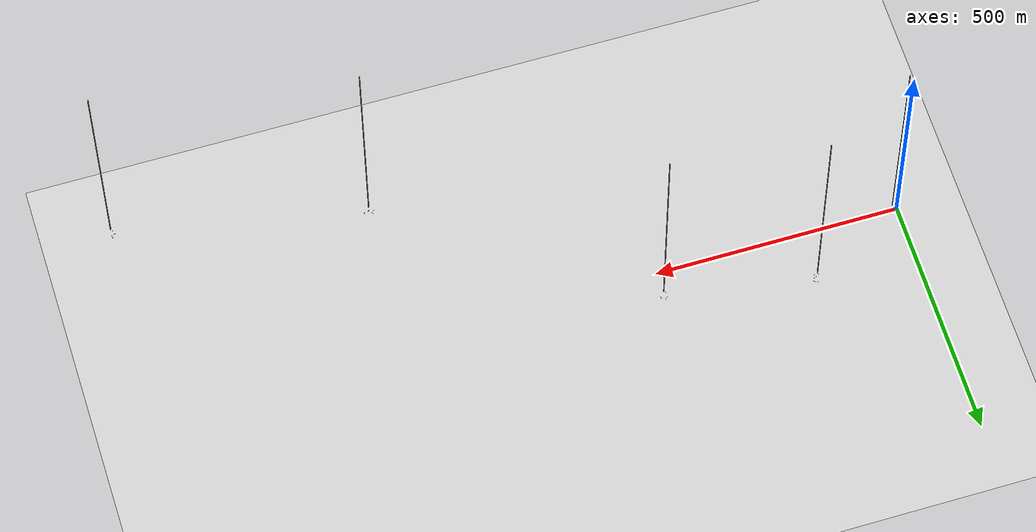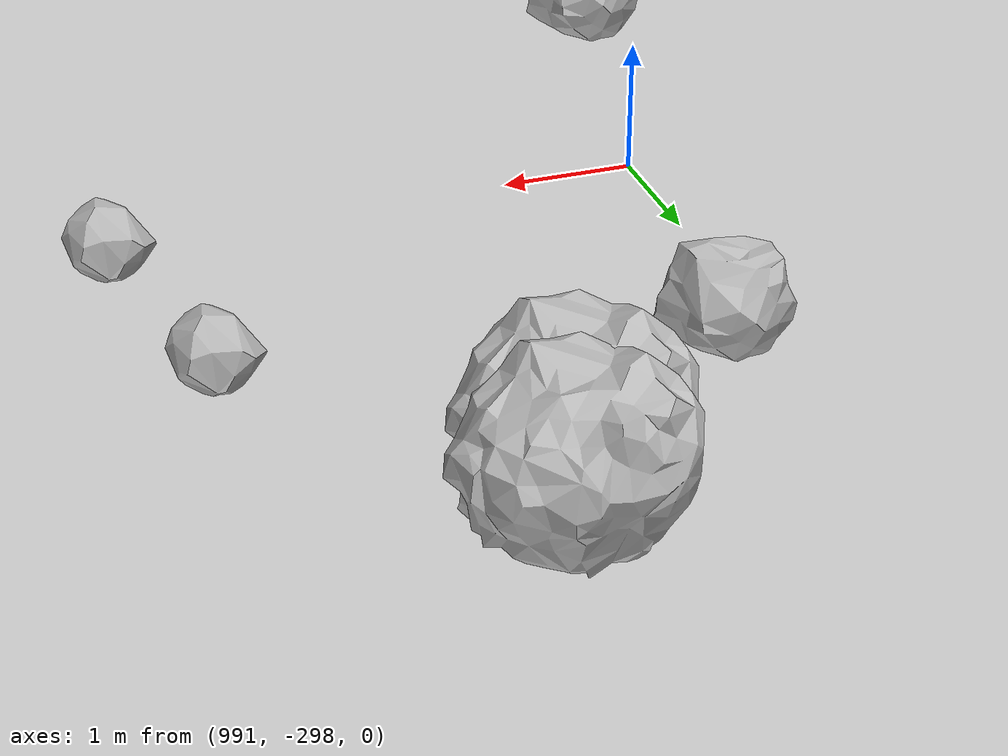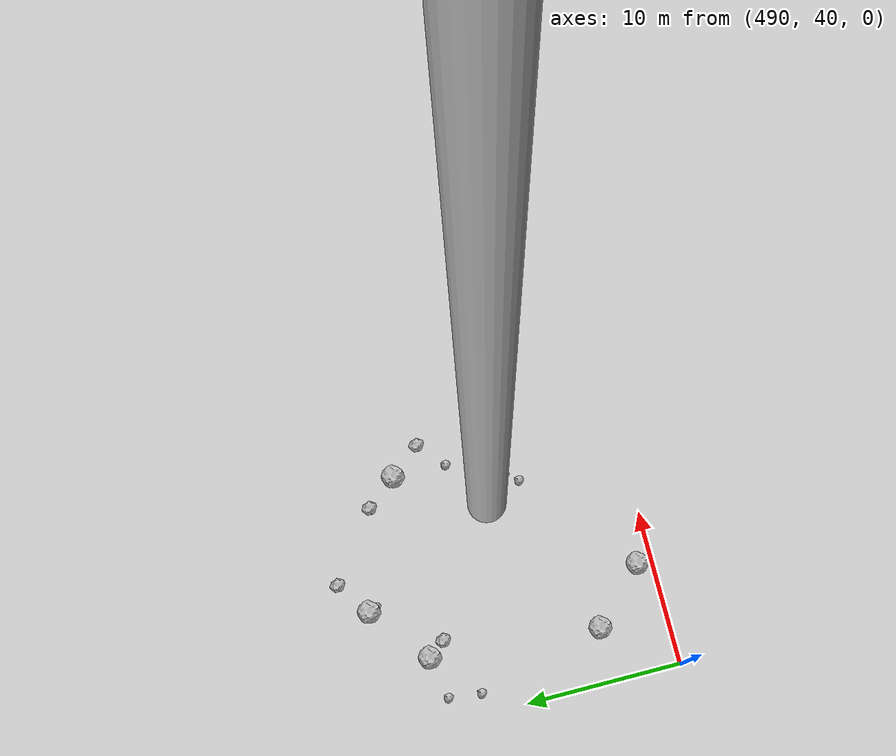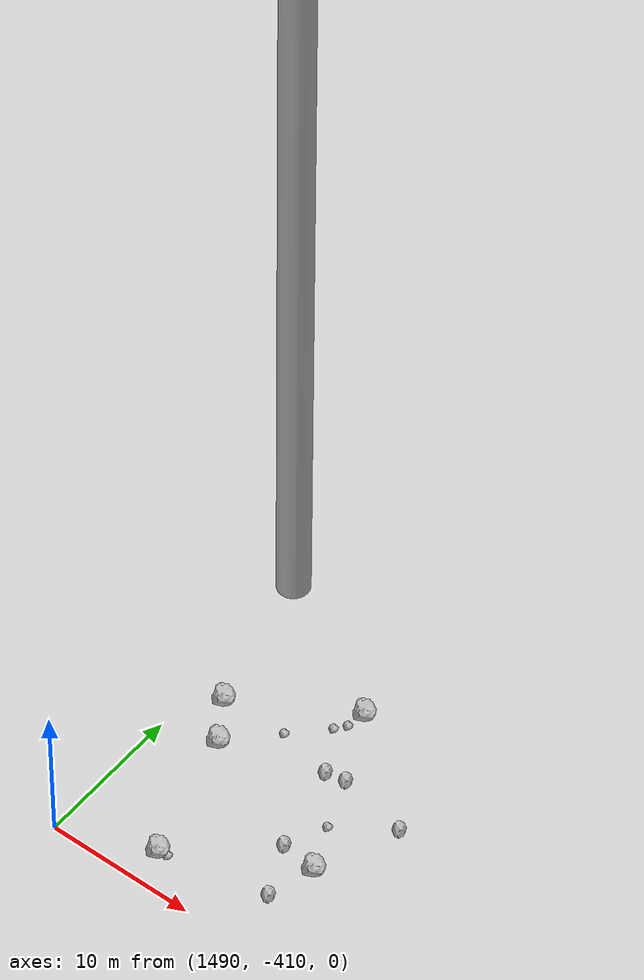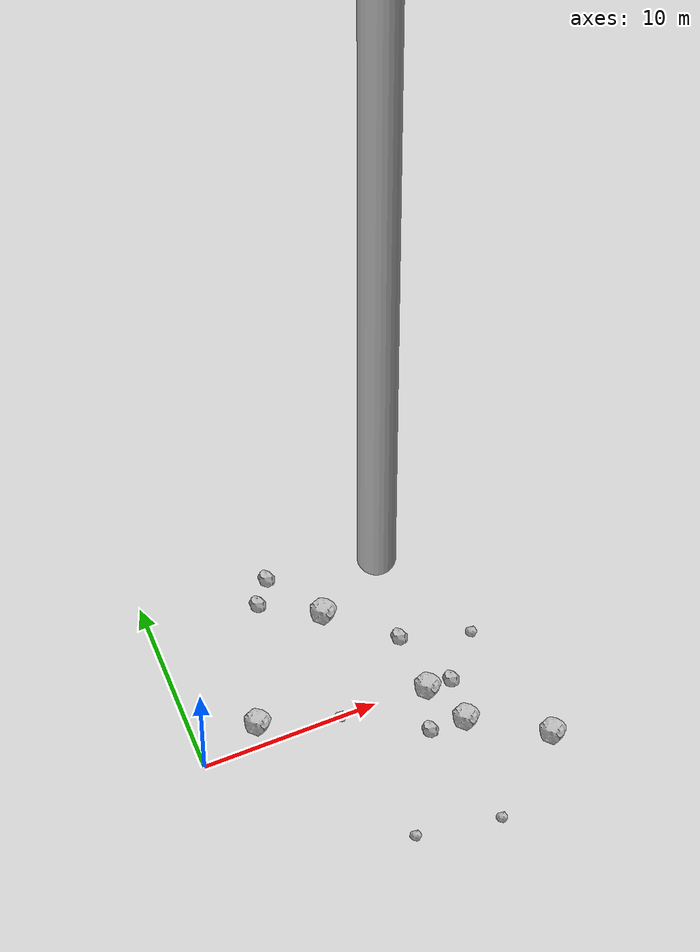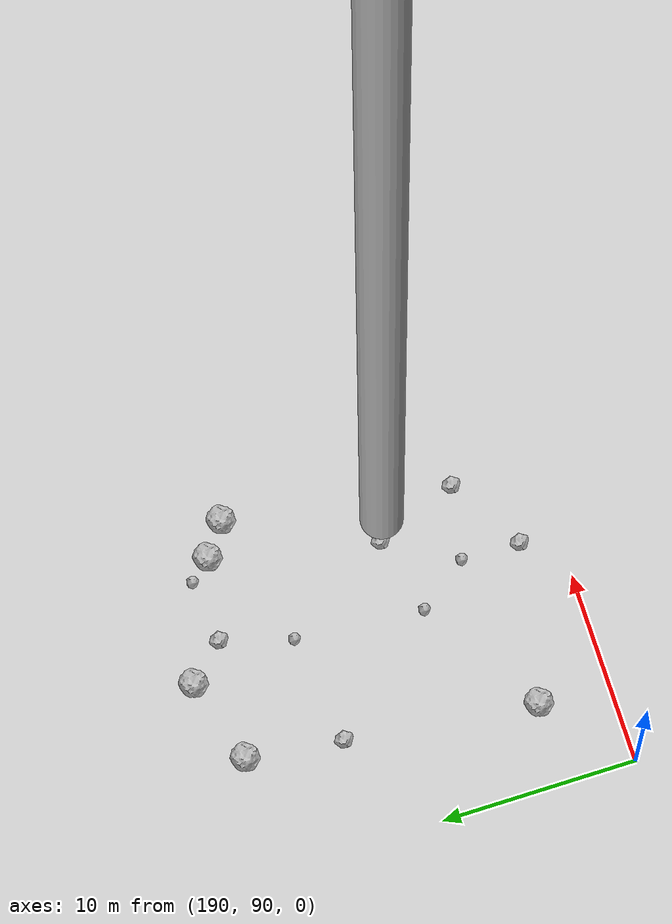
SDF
<?xml version="1.0" ?>
<sdf version="1.6">
  <world name="default">

    <include>
      <uri>model://custom_ground</uri>
    </include>

    <include>
      <uri>model://sun</uri>
    </include>

    <spherical_coordinates>
      <surface_model>EARTH_WGS84</surface_model>
      <latitude_deg>38.161479</latitude_deg>
      <longitude_deg>-122.454630</longitude_deg>
      <elevation>488.0</elevation>
      <heading_deg>90</heading_deg>
    </spherical_coordinates>

    <model name="rock1_0_0">
      <include>
        <uri>model://rock1</uri>
        <pose>13.044274785314535 -0.2279005391960176 0.5 0 0 0</pose>
      </include>
    </model>
    <model name="rock1_0_1">
      <include>
        <uri>model://rock1</uri>
        <pose>14.309179292738738 -2.6965968905884363 0.5 0 0 0</pose>
      </include>
    </model>
    <model name="rock1_0_2">
      <include>
        <uri>model://rock1</uri>
        <pose>9.349445239013747 6.0302451819494856 0.5 0 0 0</pose>
      </include>
    </model>
    <model name="rock1_0_3">
      <include>
        <uri>model://rock1</uri>
        <pose>3.5846321211621235 1.217080338961205 0.5 0 0 0</pose>
      </include>
    </model>
    <model name="rock1_0_4">
      <include>
        <uri>model://rock1</uri>
        <pose>18.405596831281027 -5.22111452049576 0.5 0 0 0</pose>
      </include>
    </model>
    <model name="rock2_0_0">
      <include>
        <uri>model://rock2</uri>
        <pose>12.687781226004535 3.161426559399329 0.3 0 0 0</pose>
      </include>
    </model>
    <model name="rock2_0_1">
      <include>
        <uri>model://rock2</uri>
        <pose>14.401714770162393 -0.2248676532811782 0.3 0 0 0</pose>
      </include>
    </model>
    <model name="rock2_0_2">
      <include>
        <uri>model://rock2</uri>
        <pose>12.21979850648227 -2.5701281278481343 0.3 0 0 0</pose>
      </include>
    </model>
    <model name="rock2_0_3">
      <include>
        <uri>model://rock2</uri>
        <pose>7.147312921058795 9.113101622864736 0.3 0 0 0</pose>
      </include>
    </model>
    <model name="rock2_0_4">
      <include>
        <uri>model://rock2</uri>
        <pose>6.138014369374652 7.851842691897197 0.3 0 0 0</pose>
      </include>
    </model>
    <model name="rock3_0_0">
      <include>
        <uri>model://rock3</uri>
        <pose>13.911626894904497 -8.799430434844473 0.2 0 0 0</pose>
      </include>
    </model>
    <model name="rock3_0_1">
      <include>
        <uri>model://rock3</uri>
        <pose>7.957015872949292 -0.07155694577047633 0.2 0 0 0</pose>
      </include>
    </model>
    <model name="rock3_0_2">
      <include>
        <uri>model://rock3</uri>
        <pose>16.49001542339953 1.976798343113785 0.2 0 0 0</pose>
      </include>
    </model>
    <model name="rock3_0_3">
      <include>
        <uri>model://rock3</uri>
        <pose>18.438494548781804 -4.751312548181903 0.2 0 0 0</pose>
      </include>
    </model>
    <model name="rock3_0_4">
      <include>
        <uri>model://rock3</uri>
        <pose>9.158274027261102 -8.054308059401283 0.2 0 0 0</pose>
      </include>
    </model>
    <model name="rock1_1_0">
      <include>
        <uri>model://rock1</uri>
        <pose>195.9560906224445 108.35895569971989 0.5 0 0 0</pose>
      </include>
    </model>
    <model name="rock1_1_1">
      <include>
        <uri>model://rock1</uri>
        <pose>194.23748130074912 93.68256869271431 0.5 0 0 0</pose>
      </include>
    </model>
    <model name="rock1_1_2">
      <include>
        <uri>model://rock1</uri>
        <pose>200.32714361480126 109.69756236041107 0.5 0 0 0</pose>
      </include>
    </model>
    <model name="rock1_1_3">
      <include>
        <uri>model://rock1</uri>
        <pose>206.34752050633406 107.14203101342974 0.5 0 0 0</pose>
      </include>
    </model>
    <model name="rock1_1_4">
      <include>
        <uri>model://rock1</uri>
        <pose>208.01954647628676 105.93721879931896 0.5 0 0 0</pose>
      </include>
    </model>
    <model name="rock2_1_0">
      <include>
        <uri>model://rock2</uri>
        <pose>206.29322729592937 94.35104590060789 0.3 0 0 0</pose>
      </include>
    </model>
    <model name="rock2_1_1">
      <include>
        <uri>model://rock2</uri>
        <pose>202.09541699008668 107.83769048426305 0.3 0 0 0</pose>
      </include>
    </model>
    <model name="rock2_1_2">
      <include>
        <uri>model://rock2</uri>
        <pose>202.405110379176 92.0030096039598 0.3 0 0 0</pose>
      </include>
    </model>
    <model name="rock2_1_3">
      <include>
        <uri>model://rock2</uri>
        <pose>204.57597844247277 98.61920740265334 0.3 0 0 0</pose>
      </include>
    </model>
    <model name="rock2_1_4">
      <include>
        <uri>model://rock2</uri>
        <pose>195.3639889940222 103.42895040110938 0.3 0 0 0</pose>
      </include>
    </model>
    <model name="rock3_1_0">
      <include>
        <uri>model://rock3</uri>
        <pose>205.35566610384035 108.19601251793068 0.2 0 0 0</pose>
      </include>
    </model>
    <model name="rock3_1_1">
      <include>
        <uri>model://rock3</uri>
        <pose>202.42940125730277 95.01379780296915 0.2 0 0 0</pose>
      </include>
    </model>
    <model name="rock3_1_2">
      <include>
        <uri>model://rock3</uri>
        <pose>195.95696684241852 108.55050954888198 0.2 0 0 0</pose>
      </include>
    </model>
    <model name="rock3_1_3">
      <include>
        <uri>model://rock3</uri>
        <pose>201.01578574485518 104.20721400372982 0.2 0 0 0</pose>
      </include>
    </model>
    <model name="rock3_1_4">
      <include>
        <uri>model://rock3</uri>
        <pose>200.5096097543862 97.57974958700774 0.2 0 0 0</pose>
      </include>
    </model>
    <model name="rock1_2_0">
      <include>
        <uri>model://rock1</uri>
        <pose>496.8512860217466 40.99897885350122 0.5 0 0 0</pose>
      </include>
    </model>
    <model name="rock1_2_1">
      <include>
        <uri>model://rock1</uri>
        <pose>506.1419103186664 54.6615012830424 0.5 0 0 0</pose>
      </include>
    </model>
    <model name="rock1_2_2">
      <include>
        <uri>model://rock1</uri>
        <pose>498.11034008389623 58.20695472963834 0.5 0 0 0</pose>
      </include>
    </model>
    <model name="rock1_2_3">
      <include>
        <uri>model://rock1</uri>
        <pose>493.50503866836004 44.335116524650985 0.5 0 0 0</pose>
      </include>
    </model>
    <model name="rock1_2_4">
      <include>
        <uri>model://rock1</uri>
        <pose>494.36994612014684 55.187036556564586 0.5 0 0 0</pose>
      </include>
    </model>
    <model name="rock2_2_0">
      <include>
        <uri>model://rock2</uri>
        <pose>504.4470129430804 47.88389307276187 0.3 0 0 0</pose>
      </include>
    </model>
    <model name="rock2_2_1">
      <include>
        <uri>model://rock2</uri>
        <pose>495.19343884220194 54.12172413209866 0.3 0 0 0</pose>
      </include>
    </model>
    <model name="rock2_2_2">
      <include>
        <uri>model://rock2</uri>
        <pose>504.54840659490054 56.61077742632318 0.3 0 0 0</pose>
      </include>
    </model>
    <model name="rock2_2_3">
      <include>
        <uri>model://rock2</uri>
        <pose>507.7756132589686 52.7125932497463 0.3 0 0 0</pose>
      </include>
    </model>
    <model name="rock2_2_4">
      <include>
        <uri>model://rock2</uri>
        <pose>500.2482835838797 59.753735761844354 0.3 0 0 0</pose>
      </include>
    </model>
    <model name="rock3_2_0">
      <include>
        <uri>model://rock3</uri>
        <pose>506.03825330770536 51.18924808922119 0.2 0 0 0</pose>
      </include>
    </model>
    <model name="rock3_2_1">
      <include>
        <uri>model://rock3</uri>
        <pose>498.28078609858477 57.70556802482399 0.2 0 0 0</pose>
      </include>
    </model>
    <model name="rock3_2_2">
      <include>
        <uri>model://rock3</uri>
        <pose>503.8754169994464 46.87209840050565 0.2 0 0 0</pose>
      </include>
    </model>
    <model name="rock3_2_3">
      <include>
        <uri>model://rock3</uri>
        <pose>491.3449473569579 52.56257272467345 0.2 0 0 0</pose>
      </include>
    </model>
    <model name="rock3_2_4">
      <include>
        <uri>model://rock3</uri>
        <pose>491.59548292220927 54.65839154924775 0.2 0 0 0</pose>
      </include>
    </model>
    <model name="rock1_3_0">
      <include>
        <uri>model://rock1</uri>
        <pose>1000.0502547540506 -303.28312315991013 0.5 0 0 0</pose>
      </include>
    </model>
    <model name="rock1_3_1">
      <include>
        <uri>model://rock1</uri>
        <pose>992.9635959818065 -294.1325512359613 0.5 0 0 0</pose>
      </include>
    </model>
    <model name="rock1_3_2">
      <include>
        <uri>model://rock1</uri>
        <pose>993.1283506933219 -293.6662051024503 0.5 0 0 0</pose>
      </include>
    </model>
    <model name="rock1_3_3">
      <include>
        <uri>model://rock1</uri>
        <pose>1000.5587490487313 -302.4694383637326 0.5 0 0 0</pose>
      </include>
    </model>
    <model name="rock1_3_4">
      <include>
        <uri>model://rock1</uri>
        <pose>1009.2956835046168 -300.8668822454308 0.5 0 0 0</pose>
      </include>
    </model>
    <model name="rock2_3_0">
      <include>
        <uri>model://rock2</uri>
        <pose>990.4106592651168 -300.583160950183 0.3 0 0 0</pose>
      </include>
    </model>
    <model name="rock2_3_1">
      <include>
        <uri>model://rock2</uri>
        <pose>993.2939437255877 -293.73348046225675 0.3 0 0 0</pose>
      </include>
    </model>
    <model name="rock2_3_2">
      <include>
        <uri>model://rock2</uri>
        <pose>998.4761610128912 -297.9859997965229 0.3 0 0 0</pose>
      </include>
    </model>
    <model name="rock2_3_3">
      <include>
        <uri>model://rock2</uri>
        <pose>1009.4305101198223 -298.9413012403318 0.3 0 0 0</pose>
      </include>
    </model>
    <model name="rock2_3_4">
      <include>
        <uri>model://rock2</uri>
        <pose>991.36674254889 -295.4155876960214 0.3 0 0 0</pose>
      </include>
    </model>
    <model name="rock3_3_0">
      <include>
        <uri>model://rock3</uri>
        <pose>992.3758103827482 -303.64276261437317 0.2 0 0 0</pose>
      </include>
    </model>
    <model name="rock3_3_1">
      <include>
        <uri>model://rock3</uri>
        <pose>995.0423266666157 -297.7540055445275 0.2 0 0 0</pose>
      </include>
    </model>
    <model name="rock3_3_2">
      <include>
        <uri>model://rock3</uri>
        <pose>999.8607927714917 -302.3462465602828 0.2 0 0 0</pose>
      </include>
    </model>
    <model name="rock3_3_3">
      <include>
        <uri>model://rock3</uri>
        <pose>994.6719323749876 -296.06255148104253 0.2 0 0 0</pose>
      </include>
    </model>
    <model name="rock3_3_4">
      <include>
        <uri>model://rock3</uri>
        <pose>993.0183820349142 -294.71265946153045 0.2 0 0 0</pose>
      </include>
    </model>
    <model name="rock1_4_0">
      <include>
        <uri>model://rock1</uri>
        <pose>1491.8278143709124 -396.2428642592309 0.5 0 0 0</pose>
      </include>
    </model>
    <model name="rock1_4_1">
      <include>
        <uri>model://rock1</uri>
        <pose>1493.6003670778543 -398.9959612146244 0.5 0 0 0</pose>
      </include>
    </model>
    <model name="rock1_4_2">
      <include>
        <uri>model://rock1</uri>
        <pose>1504.0449104515808 -403.09091682917887 0.5 0 0 0</pose>
      </include>
    </model>
    <model name="rock1_4_3">
      <include>
        <uri>model://rock1</uri>
        <pose>1499.2308276302945 -391.91605962120224 0.5 0 0 0</pose>
      </include>
    </model>
    <model name="rock1_4_4">
      <include>
        <uri>model://rock1</uri>
        <pose>1496.0011356986624 -407.6777226935217 0.5 0 0 0</pose>
      </include>
    </model>
    <model name="rock2_4_0">
      <include>
        <uri>model://rock2</uri>
        <pose>1506.2233272816118 -397.64840383587386 0.3 0 0 0</pose>
      </include>
    </model>
    <model name="rock2_4_1">
      <include>
        <uri>model://rock2</uri>
        <pose>1500.1307775497091 -396.91815744890636 0.3 0 0 0</pose>
      </include>
    </model>
    <model name="rock2_4_2">
      <include>
        <uri>model://rock2</uri>
        <pose>1501.5574657246943 -402.7416810606024 0.3 0 0 0</pose>
      </include>
    </model>
    <model name="rock2_4_3">
      <include>
        <uri>model://rock2</uri>
        <pose>1501.472418202676 -396.67675870205073 0.3 0 0 0</pose>
      </include>
    </model>
    <model name="rock2_4_4">
      <include>
        <uri>model://rock2</uri>
        <pose>1503.1161628790142 -406.2045887051272 0.3 0 0 0</pose>
      </include>
    </model>
    <model name="rock3_4_0">
      <include>
        <uri>model://rock3</uri>
        <pose>1496.2935838819321 -396.0787759891363 0.2 0 0 0</pose>
      </include>
    </model>
    <model name="rock3_4_1">
      <include>
        <uri>model://rock3</uri>
        <pose>1496.6013418843684 -407.59302276812986 0.2 0 0 0</pose>
      </include>
    </model>
    <model name="rock3_4_2">
      <include>
        <uri>model://rock3</uri>
        <pose>1498.9389557808029 -393.2318460508328 0.2 0 0 0</pose>
      </include>
    </model>
    <model name="rock3_4_3">
      <include>
        <uri>model://rock3</uri>
        <pose>1498.3940363594088 -393.94456623287067 0.2 0 0 0</pose>
      </include>
    </model>
    <model name="rock3_4_4">
      <include>
        <uri>model://rock3</uri>
        <pose>1502.698871988845 -400.0896431311457 0.2 0 0 0</pose>
      </include>
    </model>

    <model name="cylinder_1">
      <static>true</static>
      <link name="link">
        <visual name="visual">
          <geometry>
            <cylinder>
              <radius>1</radius>
              <length>500</length>
            </cylinder>
          </geometry>
        </visual>
      </link>
      <pose>10 0 270 0 0 0</pose>
    </model>

    <model name="cylinder_2">
      <static>true</static>
      <link name="link">
        <visual name="visual">
          <geometry>
            <cylinder>
              <radius>1</radius>
              <length>500</length>
            </cylinder>
          </geometry>
        </visual>
      </link>
      <pose>200 100 270 0 0 0</pose>
    </model>

    <model name="cylinder_3">
      <static>true</static>
      <link name="link">
        <visual name="visual">
          <geometry>
            <cylinder>
              <radius>1</radius>
              <length>500</length>
            </cylinder>
          </geometry>
        </visual>
      </link>
      <pose>500 50 270 0 0 0</pose>
    </model>

    <model name="cylinder_4">
      <static>true</static>
      <link name="link">
        <visual name="visual">
          <geometry>
            <cylinder>
              <radius>1</radius>
              <length>500</length>
            </cylinder>
          </geometry>
        </visual>
      </link>
      <pose>1000 -300 270 0 0 0</pose>
    </model>

    <model name="cylinder_5">
      <static>true</static>
      <link name="link">
        <visual name="visual">
          <geometry>
            <cylinder>
              <radius>1</radius>
              <length>500</length>
            </cylinder>
          </geometry>
        </visual>
      </link>
      <pose>1500 -400 270 0 0 0</pose>
    </model>

  </world>
</sdf>

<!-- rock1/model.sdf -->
<sdf version="1.6">
  <model name="rock1">
    <static>true</static> <!-- Set to true if the model should not move -->
    <pose>0 0 0 0 0 0</pose>

    <!--z offset is 0.5 for full scale-->

    <link name="link">
      <collision name="rock1_collision">
        <geometry>
          <mesh>
            <uri>model://meshes/rock1.dae</uri>
          </mesh>
        </geometry>
      </collision>
      <visual name="rock1_visual">
        <geometry>
          <mesh>
            <uri>model://meshes/rock1.dae</uri>
          </mesh>
        </geometry>
        <material>
          <script>
            <uri>model://materials/scripts/sand_pebbles.material</uri>
            <name>custom_ground/Image</name>
          </script>
        </material>
      </visual>
    </link>
  </model>
</sdf>

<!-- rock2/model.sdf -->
<sdf version="1.6">
  <model name="rock2">
    <static>true</static> <!-- Set to true if the model should not move -->
    <pose>0 0 0 0 0 0</pose>

    <!--z offset is 0.3 for full scale-->

    <link name="link">
      <collision name="rock2_collision">
        <geometry>
          <mesh>
            <uri>model://meshes/rock2.dae</uri>
          </mesh>
        </geometry>
      </collision>
      <visual name="rock2_visual">
        <geometry>
          <mesh>
            <uri>model://meshes/rock2.dae</uri>
          </mesh>
        </geometry>
        <material>
          <script>
            <uri>model://materials/scripts/sand_pebbles.material</uri>
            <name>custom_ground/Image</name>
          </script>
        </material>
      </visual>
    </link>
  </model>
</sdf>

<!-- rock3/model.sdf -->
<sdf version="1.6">
  <model name="rock3">
    <static>true</static> <!-- Set to true if the model should not move -->
    <pose>0 0 0 0 0 0</pose>

    <!--z offset is 0.2 for full scale-->

    <link name="link">
      <collision name="rock3_collision">
        <geometry>
          <mesh>
            <uri>model://meshes/rock3.dae</uri>
          </mesh>
        </geometry>
      </collision>
      <visual name="rock3_visual">
        <geometry>
          <mesh>
            <uri>model://meshes/rock3.dae</uri>
          </mesh>
        </geometry>
        <material>
          <script>
            <uri>model://materials/scripts/sand_pebbles.material</uri>
            <name>custom_ground/Image</name>
          </script>
        </material>
      </visual>
    </link>
  </model>
</sdf>

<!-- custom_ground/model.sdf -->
<sdf version="1.6">
  <model name="custom_ground">
    <static>true</static> <!-- Ground is static and immovable -->
    <link name="ground_link">
      <pose>240 0 0 0 0 0</pose> <!-- Position and orientation relative to the world -->
      <!-- Visual Representation -->
      <visual name="ground_visual">
        <geometry>
          <plane>
            <normal>0 0 1</normal> <!-- Upward facing plane -->
            <size>500 500</size> <!-- Size of the plane -->
          </plane>
        </geometry>
        <material>
          <script>
            <uri>model://materials/scripts/sand_pebbles.material</uri>
            <name>custom_ground/Image</name>
          </script>
        </material>
      </visual>

      <!-- Collision Representation -->
      <collision name="ground_collision">
        <geometry>
          <plane>
            <normal>0 0 1</normal>
            <size>100 100</size>
          </plane>
        </geometry>
      </collision>

    </link>
  </model>
</sdf>
